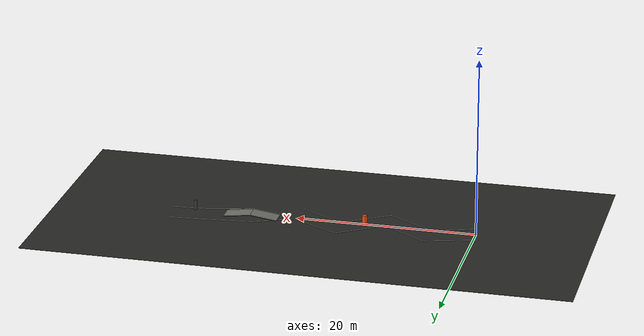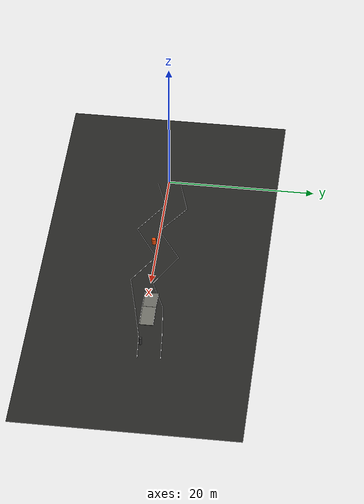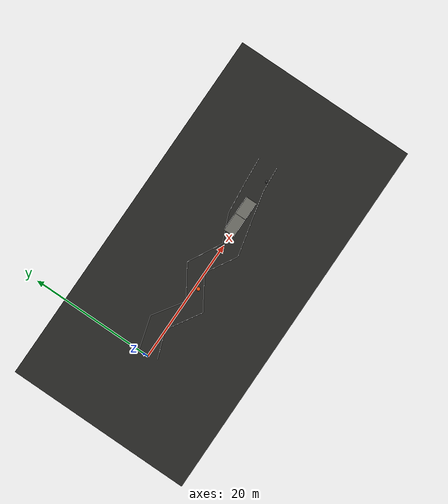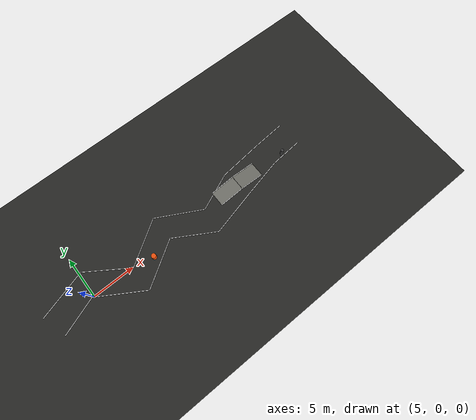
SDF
<sdf version="1.9">
 <world name="igvc_competition">
  <plugin filename="ignition-gazebo-physics-system" name="ignition::gazebo::systems::Physics"/>
  <plugin filename="ignition-gazebo-user-commands-system" name="ignition::gazebo::systems::UserCommands"/>
  <plugin filename="ignition-gazebo-scene-broadcaster-system" name="ignition::gazebo::systems::SceneBroadcaster"/>
  <plugin filename="ignition-gazebo-sensors-system" name="ignition::gazebo::systems::Sensors">
   <render_engine>ogre2</render_engine>
  </plugin>
  <light name="sun" type="directional">
   <pose>0 0 20 0 0 0</pose>
   <diffuse>0.8 0.8 0.75 1</diffuse>
   <specular>0.2 0.2 0.2 1</specular>
   <direction>-0.35 0.15 -0.92</direction>
  </light>
  <gravity>0 0 -9.80665</gravity>
  <magnetic_field>6e-06 2.3e-05 -4.2e-05</magnetic_field>
  <atmosphere type="adiabatic"/>
  <physics name="default_physics" type="ode">
   <max_step_size>0.010</max_step_size>
   <real_time_factor>1.0</real_time_factor>
   <real_time_update_rate>100</real_time_update_rate>
  </physics>
  <scene>
   <ambient>0.45 0.45 0.45 1</ambient>
   <background>0.70 0.72 0.75 1</background>
   <shadows>true</shadows>
  </scene>
  <spherical_coordinates>
   <surface_model>EARTH_WGS84</surface_model>
   <latitude_deg>37.23027000</latitude_deg>
   <longitude_deg>-80.42504000</longitude_deg>
   <elevation>650.000</elevation>
   <heading_deg>0</heading_deg>
  </spherical_coordinates>
  <model name="asphalt_ground">
   <static>1</static>
   <pose>17.0000 0.0000 -0.0250 0.000000 0.000000 0.000000</pose>
   <link name="link">
    <collision name="collision"><geometry><box><size>60.0000 30.0000 0.0500</size></box></geometry></collision>
    <visual name="visual">
     <geometry><box><size>60.0000 30.0000 0.0500</size></box></geometry>
     <material>
      <ambient>0.16 0.16 0.15 1.0</ambient>
      <diffuse>0.16 0.16 0.15 1.0</diffuse>
      <specular>0.05 0.05 0.05 1</specular>
     </material>
    </visual>
   </link>
  </model>
  <model name="left_boundary_0">
   <static>1</static>
   <pose>2.3881 2.2782 0.011 0 0 0.282070</pose>
   <link name="link">
    <visual name="visual">
     <geometry><box><size>5.9400 0.0762 0.012</size></box></geometry>
     <material>
      <ambient>0.98 0.98 0.98 1</ambient>
      <diffuse>0.98 0.98 0.98 1</diffuse>
      <specular>0.05 0.05 0.05 1</specular>
      <emissive>0.9 0.9 0.9 1</emissive>
     </material>
    </visual>
   </link>
  </model>
  <model name="right_boundary_0">
   <static>1</static>
   <pose>2.6119 -0.6782 0.011 0 0 0.345664</pose>
   <link name="link">
    <visual name="visual">
     <geometry><box><size>4.5647 0.0762 0.012</size></box></geometry>
     <material>
      <ambient>0.98 0.98 0.98 1</ambient>
      <diffuse>0.98 0.98 0.98 1</diffuse>
      <specular>0.05 0.05 0.05 1</specular>
      <emissive>0.9 0.9 0.9 1</emissive>
     </material>
    </visual>
   </link>
  </model>
  <model name="left_boundary_1">
   <static>1</static>
   <pose>7.6204 1.5144 0.011 0 0 -0.589172</pose>
   <link name="link">
    <visual name="visual">
     <geometry><box><size>5.7243 0.0762 0.012</size></box></geometry>
     <material>
      <ambient>0.98 0.98 0.98 1</ambient>
      <diffuse>0.98 0.98 0.98 1</diffuse>
      <specular>0.05 0.05 0.05 1</specular>
      <emissive>0.9 0.9 0.9 1</emissive>
     </material>
    </visual>
   </link>
  </model>
  <model name="right_boundary_1">
   <static>1</static>
   <pose>7.3796 -1.5144 0.011 0 0 -0.550831</pose>
   <link name="link">
    <visual name="visual">
     <geometry><box><size>6.1505 0.0762 0.012</size></box></geometry>
     <material>
      <ambient>0.98 0.98 0.98 1</ambient>
      <diffuse>0.98 0.98 0.98 1</diffuse>
      <specular>0.05 0.05 0.05 1</specular>
      <emissive>0.9 0.9 0.9 1</emissive>
     </material>
    </visual>
   </link>
  </model>
  <model name="left_boundary_2">
   <static>1</static>
   <pose>12.4695 1.5234 0.011 0 0 0.574719</pose>
   <link name="link">
    <visual name="visual">
     <geometry><box><size>5.8845 0.0762 0.012</size></box></geometry>
     <material>
      <ambient>0.98 0.98 0.98 1</ambient>
      <diffuse>0.98 0.98 0.98 1</diffuse>
      <specular>0.05 0.05 0.05 1</specular>
      <emissive>0.9 0.9 0.9 1</emissive>
     </material>
    </visual>
   </link>
  </model>
  <model name="right_boundary_2">
   <static>1</static>
   <pose>12.5305 -1.5234 0.011 0 0 0.564001</pose>
   <link name="link">
    <visual name="visual">
     <geometry><box><size>5.9884 0.0762 0.012</size></box></geometry>
     <material>
      <ambient>0.98 0.98 0.98 1</ambient>
      <diffuse>0.98 0.98 0.98 1</diffuse>
      <specular>0.05 0.05 0.05 1</specular>
      <emissive>0.9 0.9 0.9 1</emissive>
     </material>
    </visual>
   </link>
  </model>
  <model name="left_boundary_3">
   <static>1</static>
   <pose>17.5603 1.7180 0.011 0 0 -0.491981</pose>
   <link name="link">
    <visual name="visual">
     <geometry><box><size>5.9479 0.0762 0.012</size></box></geometry>
     <material>
      <ambient>0.98 0.98 0.98 1</ambient>
      <diffuse>0.98 0.98 0.98 1</diffuse>
      <specular>0.05 0.05 0.05 1</specular>
      <emissive>0.9 0.9 0.9 1</emissive>
     </material>
    </visual>
   </link>
  </model>
  <model name="right_boundary_3">
   <static>1</static>
   <pose>17.4397 -1.3180 0.011 0 0 -0.530447</pose>
   <link name="link">
    <visual name="visual">
     <geometry><box><size>5.5154 0.0762 0.012</size></box></geometry>
     <material>
      <ambient>0.98 0.98 0.98 1</ambient>
      <diffuse>0.98 0.98 0.98 1</diffuse>
      <specular>0.05 0.05 0.05 1</specular>
      <emissive>0.9 0.9 0.9 1</emissive>
     </material>
    </visual>
   </link>
  </model>
  <model name="left_boundary_4">
   <static>1</static>
   <pose>22.3774 1.2457 0.011 0 0 0.401623</pose>
   <link name="link">
    <visual name="visual">
     <geometry><box><size>4.7713 0.0762 0.012</size></box></geometry>
     <material>
      <ambient>0.98 0.98 0.98 1</ambient>
      <diffuse>0.98 0.98 0.98 1</diffuse>
      <specular>0.05 0.05 0.05 1</specular>
      <emissive>0.9 0.9 0.9 1</emissive>
     </material>
    </visual>
   </link>
  </model>
  <model name="right_boundary_4">
   <static>1</static>
   <pose>22.6226 -2.0457 0.011 0 0 0.233662</pose>
   <link name="link">
    <visual name="visual">
     <geometry><box><size>5.7650 0.0762 0.012</size></box></geometry>
     <material>
      <ambient>0.98 0.98 0.98 1</ambient>
      <diffuse>0.98 0.98 0.98 1</diffuse>
      <specular>0.05 0.05 0.05 1</specular>
      <emissive>0.9 0.9 0.9 1</emissive>
     </material>
    </visual>
   </link>
  </model>
  <model name="left_boundary_5">
   <static>1</static>
   <pose>27.1942 2.4455 0.011 0 0 0.101604</pose>
   <link name="link">
    <visual name="visual">
     <geometry><box><size>5.2691 0.0762 0.012</size></box></geometry>
     <material>
      <ambient>0.98 0.98 0.98 1</ambient>
      <diffuse>0.98 0.98 0.98 1</diffuse>
      <specular>0.05 0.05 0.05 1</specular>
      <emissive>0.9 0.9 0.9 1</emissive>
     </material>
    </visual>
   </link>
  </model>
  <model name="right_boundary_5">
   <static>1</static>
   <pose>27.8058 -0.8455 0.011 0 0 0.220311</pose>
   <link name="link">
    <visual name="visual">
     <geometry><box><size>4.8760 0.0762 0.012</size></box></geometry>
     <material>
      <ambient>0.98 0.98 0.98 1</ambient>
      <diffuse>0.98 0.98 0.98 1</diffuse>
      <specular>0.05 0.05 0.05 1</specular>
      <emissive>0.9 0.9 0.9 1</emissive>
     </material>
    </visual>
   </link>
  </model>
  <model name="left_boundary_6">
   <static>1</static>
   <pose>31.8506 2.8662 0.011 0 0 0.075268</pose>
   <link name="link">
    <visual name="visual">
     <geometry><box><size>4.0825 0.0762 0.012</size></box></geometry>
     <material>
      <ambient>0.98 0.98 0.98 1</ambient>
      <diffuse>0.98 0.98 0.98 1</diffuse>
      <specular>0.05 0.05 0.05 1</specular>
      <emissive>0.9 0.9 0.9 1</emissive>
     </material>
    </visual>
   </link>
  </model>
  <model name="right_boundary_6">
   <static>1</static>
   <pose>32.1494 -0.1662 0.011 0 0 0.074437</pose>
   <link name="link">
    <visual name="visual">
     <geometry><box><size>3.9400 0.0762 0.012</size></box></geometry>
     <material>
      <ambient>0.98 0.98 0.98 1</ambient>
      <diffuse>0.98 0.98 0.98 1</diffuse>
      <specular>0.05 0.05 0.05 1</specular>
      <emissive>0.9 0.9 0.9 1</emissive>
     </material>
    </visual>
   </link>
  </model>
  <model name="turn_apex_barrel">
   <static>1</static>
   <pose>12.5000 -0.5500 0 0 0 0</pose>
   <link name="link">
    <collision name="collision">
     <pose>0 0 0.4250 0 0 0</pose>
     <geometry><cylinder><radius>0.2800</radius><length>0.8500</length></cylinder></geometry>
    </collision>
    <visual name="visual">
     <pose>0 0 0.4250 0 0 0</pose>
     <geometry><cylinder><radius>0.2800</radius><length>0.8500</length></cylinder></geometry>
     <material>
      <ambient>0.95 0.32 0.05 1.0</ambient>
      <diffuse>0.95 0.32 0.05 1.0</diffuse>
      <specular>0.05 0.05 0.05 1</specular>
     </material>
    </visual>
   </link>
  </model>
  <model name="exit_post">
   <static>1</static>
   <pose>31.5000 0.1000 0 0 0 0</pose>
   <link name="link">
    <collision name="collision">
     <pose>0 0 0.5500 0 0 0</pose>
     <geometry><cylinder><radius>0.1800</radius><length>1.1000</length></cylinder></geometry>
    </collision>
    <visual name="visual">
     <pose>0 0 0.5500 0 0 0</pose>
     <geometry><cylinder><radius>0.1800</radius><length>1.1000</length></cylinder></geometry>
     <material>
      <ambient>0.25 0.25 0.25 1.0</ambient>
      <diffuse>0.25 0.25 0.25 1.0</diffuse>
      <specular>0.05 0.05 0.05 1</specular>
     </material>
    </visual>
   </link>
  </model>
  <model name="legal_grade_ramp_up">
   <static>1</static>
   <pose>23.5000 0.4000 0.2000 0.000000 -0.132552 0.000000</pose>
   <link name="link">
    <collision name="collision"><geometry><box><size>3.0265 1.8000 0.0800</size></box></geometry></collision>
    <visual name="visual">
     <geometry><box><size>3.0265 1.8000 0.0800</size></box></geometry>
     <material>
      <ambient>0.45 0.45 0.42 1.0</ambient>
      <diffuse>0.45 0.45 0.42 1.0</diffuse>
      <specular>0.05 0.05 0.05 1</specular>
     </material>
    </visual>
   </link>
  </model>
  <model name="legal_grade_ramp_down">
   <static>1</static>
   <pose>26.5000 0.4000 0.2000 0.000000 0.132552 0.000000</pose>
   <link name="link">
    <collision name="collision"><geometry><box><size>3.0265 1.8000 0.0800</size></box></geometry></collision>
    <visual name="visual">
     <geometry><box><size>3.0265 1.8000 0.0800</size></box></geometry>
     <material>
      <ambient>0.45 0.45 0.42 1.0</ambient>
      <diffuse>0.45 0.45 0.42 1.0</diffuse>
      <specular>0.05 0.05 0.05 1</specular>
     </material>
    </visual>
   </link>
  </model>
  <model name="legal_grade_ramp_up_left_white_line">
   <static>1</static>
   <pose>23.5000 1.3000 0.2520 0.000000 -0.132552 0.000000</pose>
   <link name="link">
    <visual name="visual">
     <geometry><box><size>3.0265 0.0762 0.012</size></box></geometry>
     <material>
      <ambient>0.98 0.98 0.98 1</ambient>
      <diffuse>0.98 0.98 0.98 1</diffuse>
      <specular>0.05 0.05 0.05 1</specular>
      <emissive>0.9 0.9 0.9 1</emissive>
     </material>
    </visual>
   </link>
  </model>
  <model name="legal_grade_ramp_up_right_white_line">
   <static>1</static>
   <pose>23.5000 -0.5000 0.2520 0.000000 -0.132552 0.000000</pose>
   <link name="link">
    <visual name="visual">
     <geometry><box><size>3.0265 0.0762 0.012</size></box></geometry>
     <material>
      <ambient>0.98 0.98 0.98 1</ambient>
      <diffuse>0.98 0.98 0.98 1</diffuse>
      <specular>0.05 0.05 0.05 1</specular>
      <emissive>0.9 0.9 0.9 1</emissive>
     </material>
    </visual>
   </link>
  </model>
  <model name="legal_grade_ramp_down_left_white_line">
   <static>1</static>
   <pose>26.5000 1.3000 0.2520 0.000000 0.132552 0.000000</pose>
   <link name="link">
    <visual name="visual">
     <geometry><box><size>3.0265 0.0762 0.012</size></box></geometry>
     <material>
      <ambient>0.98 0.98 0.98 1</ambient>
      <diffuse>0.98 0.98 0.98 1</diffuse>
      <specular>0.05 0.05 0.05 1</specular>
      <emissive>0.9 0.9 0.9 1</emissive>
     </material>
    </visual>
   </link>
  </model>
  <model name="legal_grade_ramp_down_right_white_line">
   <static>1</static>
   <pose>26.5000 -0.5000 0.2520 0.000000 0.132552 0.000000</pose>
   <link name="link">
    <visual name="visual">
     <geometry><box><size>3.0265 0.0762 0.012</size></box></geometry>
     <material>
      <ambient>0.98 0.98 0.98 1</ambient>
      <diffuse>0.98 0.98 0.98 1</diffuse>
      <specular>0.05 0.05 0.05 1</specular>
      <emissive>0.9 0.9 0.9 1</emissive>
     </material>
    </visual>
   </link>
  </model>
 </world>
</sdf>
